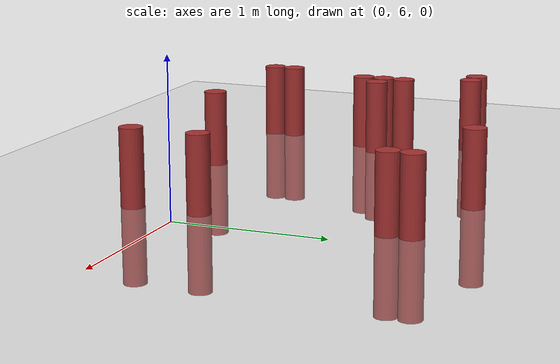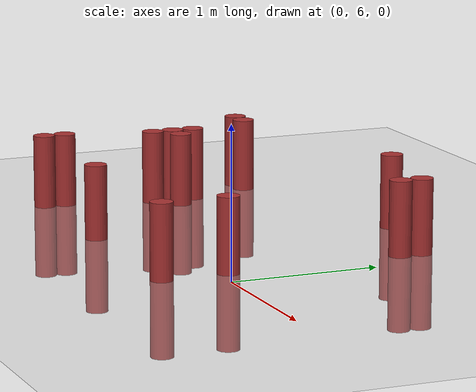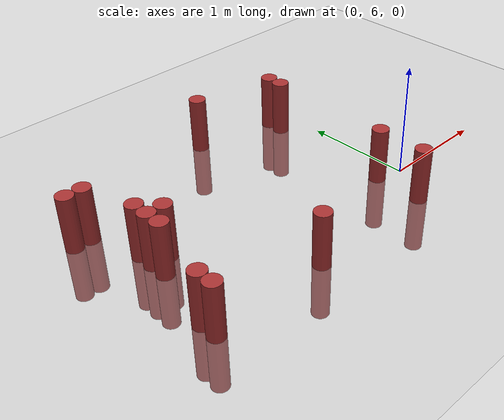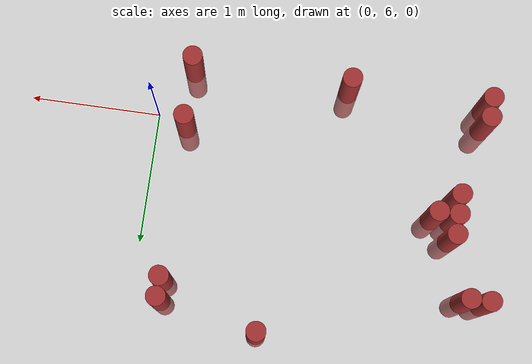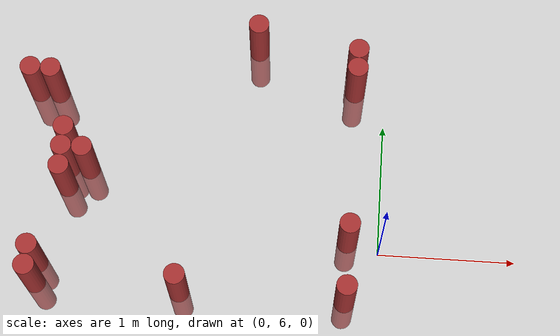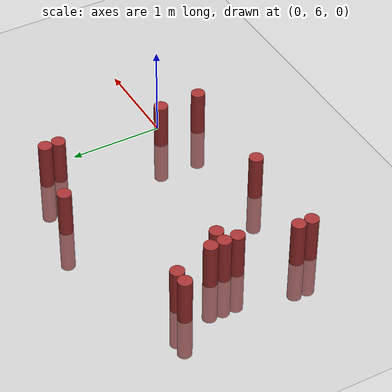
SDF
<sdf version="1.6">
 <world name="default">
  <model name="ground_plane">
   <static>1</static>
   <link name="link">
    <collision name="collision">
     <geometry><plane><normal>0 0 1</normal><size>100 100</size></plane></geometry>
     <surface><friction><ode><mu>100</mu><mu2>50</mu2></ode></friction></surface>
    </collision>
    <visual name="visual">
     <cast_shadows>0</cast_shadows>
     <geometry><plane><normal>0 0 1</normal><size>100 100</size></plane></geometry>
     <material>
      <script><uri>file://media/materials/scripts/gazebo.material</uri><name>Gazebo/Grey</name></script>
     </material>
    </visual>
   </link>
  </model>
  <model name="unit_cylinder_165">
   <static>1</static>
   <pose>-2.625000 7.125000 0.000000 0.000000 0.000000 0.000000</pose>
   <link name="link">
    <inertial>
     <mass>1</mass>
     <inertia><ixx>0.145833</ixx><ixy>0</ixy><ixz>0</ixz><iyy>0.145833</iyy><iyz>0</iyz><izz>0.125</izz></inertia>
    </inertial>
    <collision name="collision">
     <geometry><cylinder><radius>0.075000</radius><length>1</length></cylinder></geometry>
    </collision>
    <visual name="visual">
     <geometry><cylinder><radius>0.075000</radius><length>1</length></cylinder></geometry>
     <material>
      <ambient>0.648000 0.192000 0.192000 1</ambient>
      <diffuse>0.648000 0.192000 0.192000 1</diffuse>
     </material>
     <material>
      <script><name>Gazebo/Grey</name><uri>file://media/materials/scripts/gazebo.material</uri></script>
     </material>
    </visual>
   </link>
  </model>
  <model name="unit_cylinder_169">
   <static>1</static>
   <pose>-2.475000 5.625000 0.000000 0.000000 0.000000 0.000000</pose>
   <link name="link">
    <inertial>
     <mass>1</mass>
     <inertia><ixx>0.145833</ixx><ixy>0</ixy><ixz>0</ixz><iyy>0.145833</iyy><iyz>0</iyz><izz>0.125</izz></inertia>
    </inertial>
    <collision name="collision">
     <geometry><cylinder><radius>0.075000</radius><length>1</length></cylinder></geometry>
    </collision>
    <visual name="visual">
     <geometry><cylinder><radius>0.075000</radius><length>1</length></cylinder></geometry>
     <material>
      <ambient>0.648000 0.192000 0.192000 1</ambient>
      <diffuse>0.648000 0.192000 0.192000 1</diffuse>
     </material>
     <material>
      <script><name>Gazebo/Grey</name><uri>file://media/materials/scripts/gazebo.material</uri></script>
     </material>
    </visual>
   </link>
  </model>
  <model name="unit_cylinder_170">
   <static>1</static>
   <pose>-2.475000 5.775000 0.000000 0.000000 0.000000 0.000000</pose>
   <link name="link">
    <inertial>
     <mass>1</mass>
     <inertia><ixx>0.145833</ixx><ixy>0</ixy><ixz>0</ixz><iyy>0.145833</iyy><iyz>0</iyz><izz>0.125</izz></inertia>
    </inertial>
    <collision name="collision">
     <geometry><cylinder><radius>0.075000</radius><length>1</length></cylinder></geometry>
    </collision>
    <visual name="visual">
     <geometry><cylinder><radius>0.075000</radius><length>1</length></cylinder></geometry>
     <material>
      <ambient>0.648000 0.192000 0.192000 1</ambient>
      <diffuse>0.648000 0.192000 0.192000 1</diffuse>
     </material>
     <material>
      <script><name>Gazebo/Grey</name><uri>file://media/materials/scripts/gazebo.material</uri></script>
     </material>
    </visual>
   </link>
  </model>
  <model name="unit_cylinder_171">
   <static>1</static>
   <pose>-2.475000 7.125000 0.000000 0.000000 0.000000 0.000000</pose>
   <link name="link">
    <inertial>
     <mass>1</mass>
     <inertia><ixx>0.145833</ixx><ixy>0</ixy><ixz>0</ixz><iyy>0.145833</iyy><iyz>0</iyz><izz>0.125</izz></inertia>
    </inertial>
    <collision name="collision">
     <geometry><cylinder><radius>0.075000</radius><length>1</length></cylinder></geometry>
    </collision>
    <visual name="visual">
     <geometry><cylinder><radius>0.075000</radius><length>1</length></cylinder></geometry>
     <material>
      <ambient>0.648000 0.192000 0.192000 1</ambient>
      <diffuse>0.648000 0.192000 0.192000 1</diffuse>
     </material>
     <material>
      <script><name>Gazebo/Grey</name><uri>file://media/materials/scripts/gazebo.material</uri></script>
     </material>
    </visual>
   </link>
  </model>
  <model name="unit_cylinder_175">
   <static>1</static>
   <pose>-2.325000 6.375000 0.000000 0.000000 0.000000 0.000000</pose>
   <link name="link">
    <inertial>
     <mass>1</mass>
     <inertia><ixx>0.145833</ixx><ixy>0</ixy><ixz>0</ixz><iyy>0.145833</iyy><iyz>0</iyz><izz>0.125</izz></inertia>
    </inertial>
    <collision name="collision">
     <geometry><cylinder><radius>0.075000</radius><length>1</length></cylinder></geometry>
    </collision>
    <visual name="visual">
     <geometry><cylinder><radius>0.075000</radius><length>1</length></cylinder></geometry>
     <material>
      <ambient>0.648000 0.192000 0.192000 1</ambient>
      <diffuse>0.648000 0.192000 0.192000 1</diffuse>
     </material>
     <material>
      <script><name>Gazebo/Grey</name><uri>file://media/materials/scripts/gazebo.material</uri></script>
     </material>
    </visual>
   </link>
  </model>
  <model name="unit_cylinder_176">
   <static>1</static>
   <pose>-2.325000 6.525000 0.000000 0.000000 0.000000 0.000000</pose>
   <link name="link">
    <inertial>
     <mass>1</mass>
     <inertia><ixx>0.145833</ixx><ixy>0</ixy><ixz>0</ixz><iyy>0.145833</iyy><iyz>0</iyz><izz>0.125</izz></inertia>
    </inertial>
    <collision name="collision">
     <geometry><cylinder><radius>0.075000</radius><length>1</length></cylinder></geometry>
    </collision>
    <visual name="visual">
     <geometry><cylinder><radius>0.075000</radius><length>1</length></cylinder></geometry>
     <material>
      <ambient>0.648000 0.192000 0.192000 1</ambient>
      <diffuse>0.648000 0.192000 0.192000 1</diffuse>
     </material>
     <material>
      <script><name>Gazebo/Grey</name><uri>file://media/materials/scripts/gazebo.material</uri></script>
     </material>
    </visual>
   </link>
  </model>
  <model name="unit_cylinder_177">
   <static>1</static>
   <pose>-2.325000 6.675000 0.000000 0.000000 0.000000 0.000000</pose>
   <link name="link">
    <inertial>
     <mass>1</mass>
     <inertia><ixx>0.145833</ixx><ixy>0</ixy><ixz>0</ixz><iyy>0.145833</iyy><iyz>0</iyz><izz>0.125</izz></inertia>
    </inertial>
    <collision name="collision">
     <geometry><cylinder><radius>0.075000</radius><length>1</length></cylinder></geometry>
    </collision>
    <visual name="visual">
     <geometry><cylinder><radius>0.075000</radius><length>1</length></cylinder></geometry>
     <material>
      <ambient>0.648000 0.192000 0.192000 1</ambient>
      <diffuse>0.648000 0.192000 0.192000 1</diffuse>
     </material>
     <material>
      <script><name>Gazebo/Grey</name><uri>file://media/materials/scripts/gazebo.material</uri></script>
     </material>
    </visual>
   </link>
  </model>
  <model name="unit_cylinder_181">
   <static>1</static>
   <pose>-2.175000 6.525000 0.000000 0.000000 0.000000 0.000000</pose>
   <link name="link">
    <inertial>
     <mass>1</mass>
     <inertia><ixx>0.145833</ixx><ixy>0</ixy><ixz>0</ixz><iyy>0.145833</iyy><iyz>0</iyz><izz>0.125</izz></inertia>
    </inertial>
    <collision name="collision">
     <geometry><cylinder><radius>0.075000</radius><length>1</length></cylinder></geometry>
    </collision>
    <visual name="visual">
     <geometry><cylinder><radius>0.075000</radius><length>1</length></cylinder></geometry>
     <material>
      <ambient>0.648000 0.192000 0.192000 1</ambient>
      <diffuse>0.648000 0.192000 0.192000 1</diffuse>
     </material>
     <material>
      <script><name>Gazebo/Grey</name><uri>file://media/materials/scripts/gazebo.material</uri></script>
     </material>
    </visual>
   </link>
  </model>
  <model name="unit_cylinder_190">
   <static>1</static>
   <pose>-1.425000 5.625000 0.000000 0.000000 0.000000 0.000000</pose>
   <link name="link">
    <inertial>
     <mass>1</mass>
     <inertia><ixx>0.145833</ixx><ixy>0</ixy><ixz>0</ixz><iyy>0.145833</iyy><iyz>0</iyz><izz>0.125</izz></inertia>
    </inertial>
    <collision name="collision">
     <geometry><cylinder><radius>0.075000</radius><length>1</length></cylinder></geometry>
    </collision>
    <visual name="visual">
     <geometry><cylinder><radius>0.075000</radius><length>1</length></cylinder></geometry>
     <material>
      <ambient>0.648000 0.192000 0.192000 1</ambient>
      <diffuse>0.648000 0.192000 0.192000 1</diffuse>
     </material>
     <material>
      <script><name>Gazebo/Grey</name><uri>file://media/materials/scripts/gazebo.material</uri></script>
     </material>
    </visual>
   </link>
  </model>
  <model name="unit_cylinder_192">
   <static>1</static>
   <pose>-0.975000 7.575000 0.000000 0.000000 0.000000 0.000000</pose>
   <link name="link">
    <inertial>
     <mass>1</mass>
     <inertia><ixx>0.145833</ixx><ixy>0</ixy><ixz>0</ixz><iyy>0.145833</iyy><iyz>0</iyz><izz>0.125</izz></inertia>
    </inertial>
    <collision name="collision">
     <geometry><cylinder><radius>0.075000</radius><length>1</length></cylinder></geometry>
    </collision>
    <visual name="visual">
     <geometry><cylinder><radius>0.075000</radius><length>1</length></cylinder></geometry>
     <material>
      <ambient>0.648000 0.192000 0.192000 1</ambient>
      <diffuse>0.648000 0.192000 0.192000 1</diffuse>
     </material>
     <material>
      <script><name>Gazebo/Grey</name><uri>file://media/materials/scripts/gazebo.material</uri></script>
     </material>
    </visual>
   </link>
  </model>
  <model name="unit_cylinder_198">
   <static>1</static>
   <pose>-0.225000 5.625000 0.000000 0.000000 0.000000 0.000000</pose>
   <link name="link">
    <inertial>
     <mass>1</mass>
     <inertia><ixx>0.145833</ixx><ixy>0</ixy><ixz>0</ixz><iyy>0.145833</iyy><iyz>0</iyz><izz>0.125</izz></inertia>
    </inertial>
    <collision name="collision">
     <geometry><cylinder><radius>0.075000</radius><length>1</length></cylinder></geometry>
    </collision>
    <visual name="visual">
     <geometry><cylinder><radius>0.075000</radius><length>1</length></cylinder></geometry>
     <material>
      <ambient>0.648000 0.192000 0.192000 1</ambient>
      <diffuse>0.648000 0.192000 0.192000 1</diffuse>
     </material>
     <material>
      <script><name>Gazebo/Grey</name><uri>file://media/materials/scripts/gazebo.material</uri></script>
     </material>
    </visual>
   </link>
  </model>
  <model name="unit_cylinder_199">
   <static>1</static>
   <pose>-0.225000 6.075000 0.000000 0.000000 0.000000 0.000000</pose>
   <link name="link">
    <inertial>
     <mass>1</mass>
     <inertia><ixx>0.145833</ixx><ixy>0</ixy><ixz>0</ixz><iyy>0.145833</iyy><iyz>0</iyz><izz>0.125</izz></inertia>
    </inertial>
    <collision name="collision">
     <geometry><cylinder><radius>0.075000</radius><length>1</length></cylinder></geometry>
    </collision>
    <visual name="visual">
     <geometry><cylinder><radius>0.075000</radius><length>1</length></cylinder></geometry>
     <material>
      <ambient>0.648000 0.192000 0.192000 1</ambient>
      <diffuse>0.648000 0.192000 0.192000 1</diffuse>
     </material>
     <material>
      <script><name>Gazebo/Grey</name><uri>file://media/materials/scripts/gazebo.material</uri></script>
     </material>
    </visual>
   </link>
  </model>
  <model name="unit_cylinder_200">
   <static>1</static>
   <pose>-0.225000 7.275000 0.000000 0.000000 0.000000 0.000000</pose>
   <link name="link">
    <inertial>
     <mass>1</mass>
     <inertia><ixx>0.145833</ixx><ixy>0</ixy><ixz>0</ixz><iyy>0.145833</iyy><iyz>0</iyz><izz>0.125</izz></inertia>
    </inertial>
    <collision name="collision">
     <geometry><cylinder><radius>0.075000</radius><length>1</length></cylinder></geometry>
    </collision>
    <visual name="visual">
     <geometry><cylinder><radius>0.075000</radius><length>1</length></cylinder></geometry>
     <material>
      <ambient>0.648000 0.192000 0.192000 1</ambient>
      <diffuse>0.648000 0.192000 0.192000 1</diffuse>
     </material>
     <material>
      <script><name>Gazebo/Grey</name><uri>file://media/materials/scripts/gazebo.material</uri></script>
     </material>
    </visual>
   </link>
  </model>
  <model name="unit_cylinder_201">
   <static>1</static>
   <pose>-0.225000 7.425000 0.000000 0.000000 0.000000 0.000000</pose>
   <link name="link">
    <inertial>
     <mass>1</mass>
     <inertia><ixx>0.145833</ixx><ixy>0</ixy><ixz>0</ixz><iyy>0.145833</iyy><iyz>0</iyz><izz>0.125</izz></inertia>
    </inertial>
    <collision name="collision">
     <geometry><cylinder><radius>0.075000</radius><length>1</length></cylinder></geometry>
    </collision>
    <visual name="visual">
     <geometry><cylinder><radius>0.075000</radius><length>1</length></cylinder></geometry>
     <material>
      <ambient>0.648000 0.192000 0.192000 1</ambient>
      <diffuse>0.648000 0.192000 0.192000 1</diffuse>
     </material>
     <material>
      <script><name>Gazebo/Grey</name><uri>file://media/materials/scripts/gazebo.material</uri></script>
     </material>
    </visual>
   </link>
  </model>
 </world>
</sdf>
